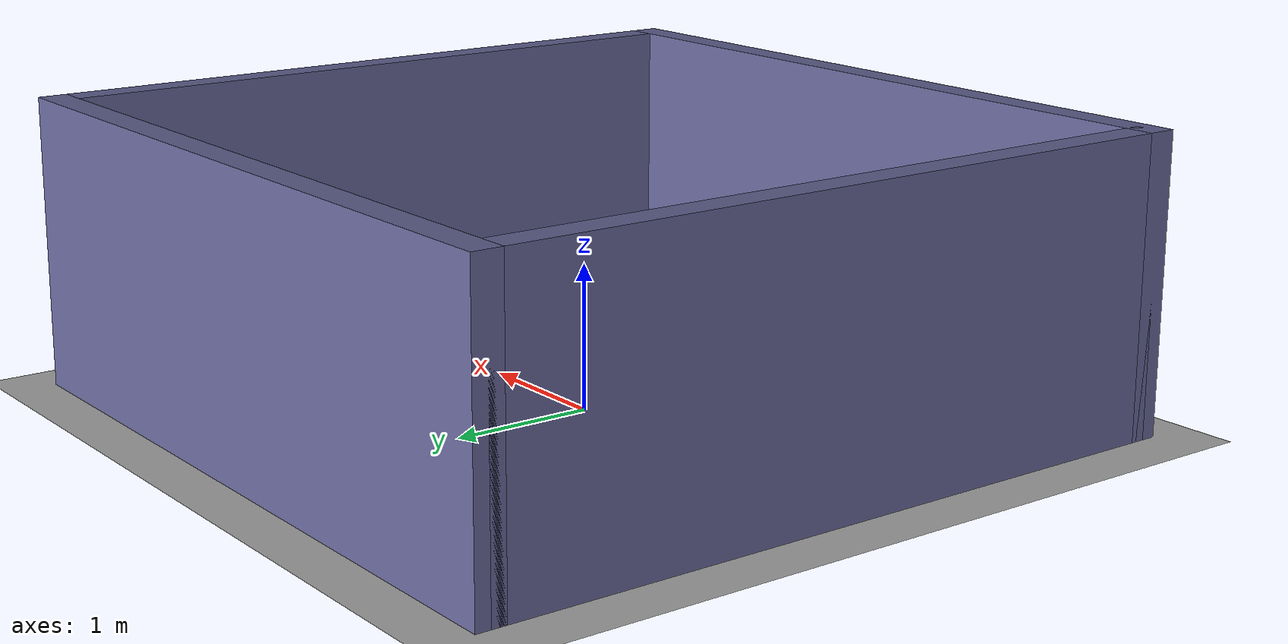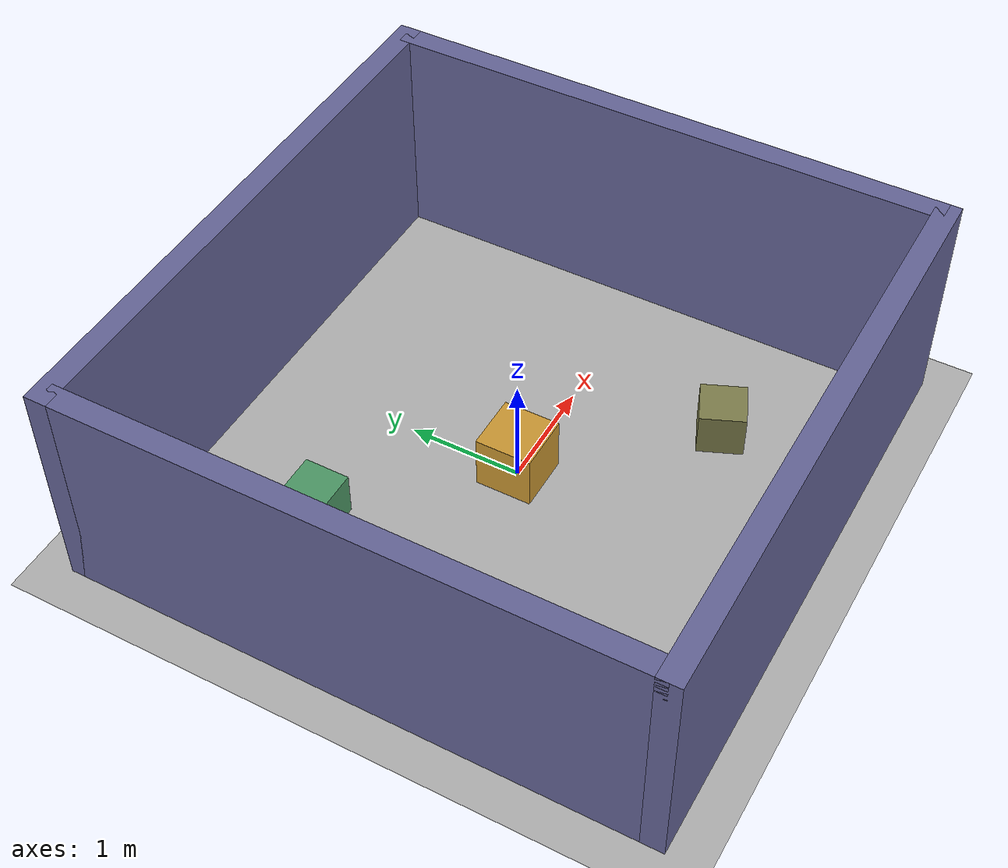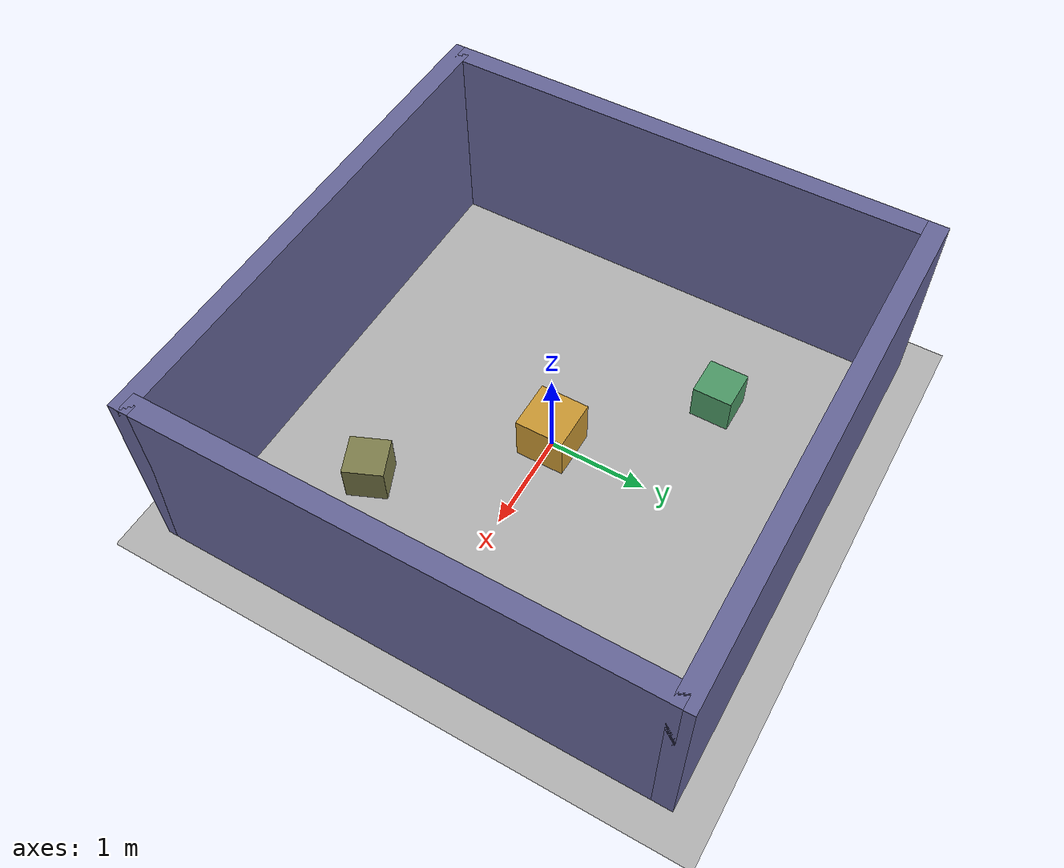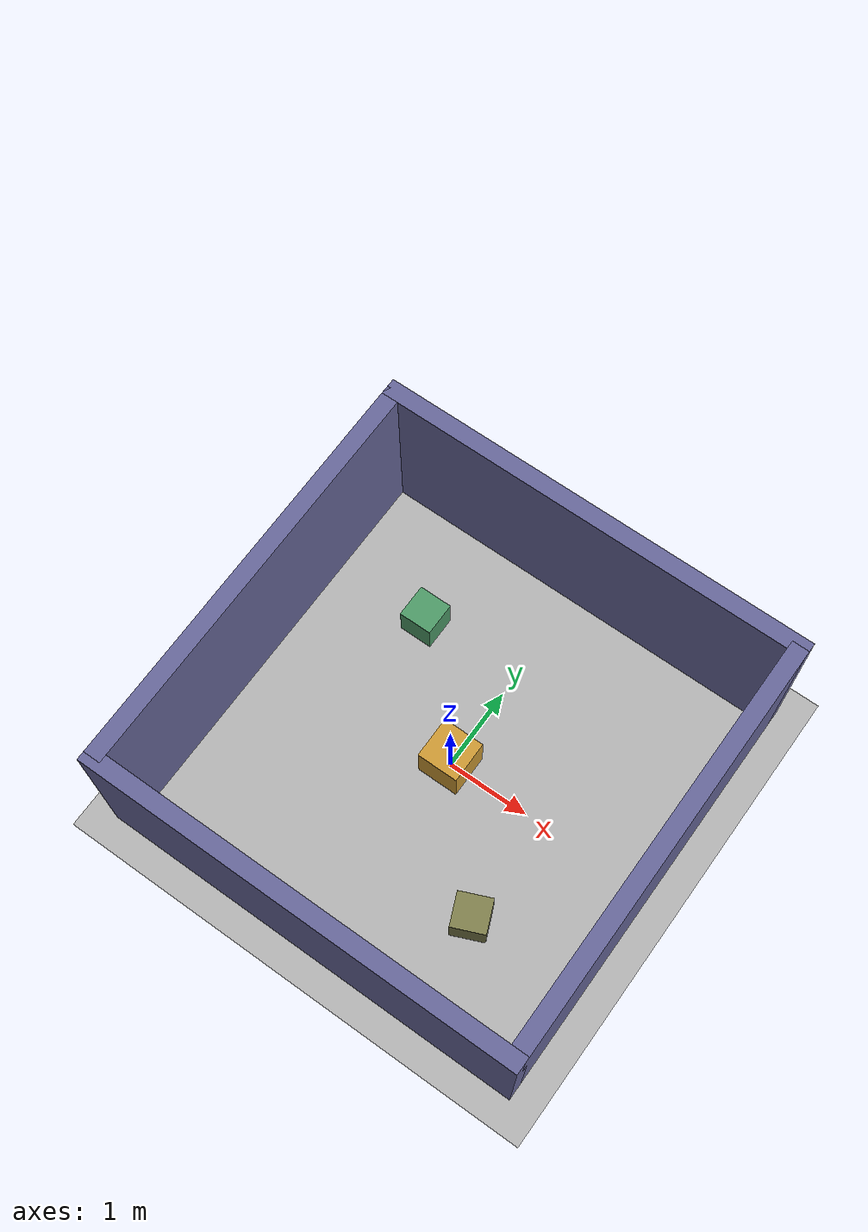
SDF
<?xml version="1.0" ?>
<sdf version='1.8'>
  <world name='bench_room_small'>

    <physics name='4ms' type='ignored'>
      <max_step_size>0.004</max_step_size>
      <real_time_factor>1</real_time_factor>
    </physics>

    <plugin filename="ignition-gazebo-physics-system"
            name="ignition::gazebo::systems::Physics"/>
    <plugin filename="ignition-gazebo-user-commands-system"
            name="ignition::gazebo::systems::UserCommands"/>
    <plugin filename="ignition-gazebo-scene-broadcaster-system"
            name="ignition::gazebo::systems::SceneBroadcaster"/>
    <plugin filename="ignition-gazebo-sensors-system"
            name="ignition::gazebo::systems::Sensors">
      <render_engine>ogre2</render_engine>
    </plugin>
    <plugin filename="ignition-gazebo-contact-system"
            name="ignition::gazebo::systems::Contact"/>
    <plugin filename="ignition-gazebo-imu-system"
            name="ignition::gazebo::systems::Imu"/>

    <light name='sun' type='directional'>
      <pose>0 0 10 0 0 0</pose>
      <cast_shadows>true</cast_shadows>
      <intensity>1</intensity>
      <direction>-0.5 0.1 -0.9</direction>
      <diffuse>0.8 0.8 0.8 1</diffuse>
      <specular>0.2 0.2 0.2 1</specular>
    </light>

    <!-- Ground plane -->
    <model name='ground_plane'>
      <static>true</static>
      <link name='link'>
        <collision name='collision'>
          <geometry><plane><normal>0 0 1</normal><size>100 100</size></plane></geometry>
        </collision>
        <visual name='visual'>
          <geometry><plane><normal>0 0 1</normal><size>100 100</size></plane></geometry>
          <material>
            <ambient>0.7 0.7 0.7 1</ambient>
            <diffuse>0.7 0.7 0.7 1</diffuse>
          </material>
        </visual>
      </link>
    </model>

    <!-- North wall -->
    <model name='sb_wall_north'><static>true</static><link name='link'>
      <pose>0 2.5 1 0 0 0</pose>
      <collision name='c'><geometry><box><size>5.2 0.2 2</size></box></geometry></collision>
      <visual name='v'><geometry><box><size>5.2 0.2 2</size></box></geometry>
        <material><ambient>0.4 0.4 0.6 1</ambient><diffuse>0.4 0.4 0.6 1</diffuse></material></visual>
    </link></model>

    <!-- South wall -->
    <model name='sb_wall_south'><static>true</static><link name='link'>
      <pose>0 -2.5 1 0 0 0</pose>
      <collision name='c'><geometry><box><size>5.2 0.2 2</size></box></geometry></collision>
      <visual name='v'><geometry><box><size>5.2 0.2 2</size></box></geometry>
        <material><ambient>0.4 0.4 0.6 1</ambient><diffuse>0.4 0.4 0.6 1</diffuse></material></visual>
    </link></model>

    <!-- East wall -->
    <model name='sb_wall_east'><static>true</static><link name='link'>
      <pose>2.5 0 1 0 0 0</pose>
      <collision name='c'><geometry><box><size>0.2 5 2</size></box></geometry></collision>
      <visual name='v'><geometry><box><size>0.2 5 2</size></box></geometry>
        <material><ambient>0.4 0.4 0.6 1</ambient><diffuse>0.4 0.4 0.6 1</diffuse></material></visual>
    </link></model>

    <!-- West wall -->
    <model name='sb_wall_west'><static>true</static><link name='link'>
      <pose>-2.5 0 1 0 0 0</pose>
      <collision name='c'><geometry><box><size>0.2 5 2</size></box></geometry></collision>
      <visual name='v'><geometry><box><size>0.2 5 2</size></box></geometry>
        <material><ambient>0.4 0.4 0.6 1</ambient><diffuse>0.4 0.4 0.6 1</diffuse></material></visual>
    </link></model>

    <!-- Small obstacles — spaced to leave the (1.5, 1.0) generic spawn
         point and all corners clear. -->
    <model name='sb_obstacle_center'><static>true</static><link name='link'>
      <pose>0 0 0.25 0 0 0</pose>
      <collision name='c'><geometry><box><size>0.5 0.5 0.5</size></box></geometry></collision>
      <visual name='v'><geometry><box><size>0.5 0.5 0.5</size></box></geometry>
        <material><ambient>0.8 0.6 0.2 1</ambient><diffuse>0.8 0.6 0.2 1</diffuse></material></visual>
    </link></model>

    <model name='sb_obstacle_nw'><static>true</static><link name='link'>
      <pose>-1.2 1.2 0.2 0 0 0</pose>
      <collision name='c'><geometry><box><size>0.4 0.4 0.4</size></box></geometry></collision>
      <visual name='v'><geometry><box><size>0.4 0.4 0.4</size></box></geometry>
        <material><ambient>0.3 0.6 0.4 1</ambient><diffuse>0.3 0.6 0.4 1</diffuse></material></visual>
    </link></model>

    <model name='sb_obstacle_se'><static>true</static><link name='link'>
      <pose>1.2 -1.3 0.2 0 0 0.4</pose>
      <collision name='c'><geometry><box><size>0.4 0.4 0.4</size></box></geometry></collision>
      <visual name='v'><geometry><box><size>0.4 0.4 0.4</size></box></geometry>
        <material><ambient>0.5 0.5 0.3 1</ambient><diffuse>0.5 0.5 0.3 1</diffuse></material></visual>
    </link></model>

    <!-- Overview camera -->
    <model name='world_monitor_cam'>
      <static>true</static>
      <pose>0 0 5.5 0 1.5708 0</pose>
      <link name='link'>
        <sensor name='monitor_camera' type='camera'>
          <always_on>true</always_on>
          <update_rate>10</update_rate>
          <topic>world_monitor/image_raw</topic>
          <camera>
            <horizontal_fov>1.4</horizontal_fov>
            <image><width>960</width><height>540</height><format>R8G8B8</format></image>
            <clip><near>0.05</near><far>15.0</far></clip>
          </camera>
        </sensor>
      </link>
    </model>

  </world>
</sdf>
